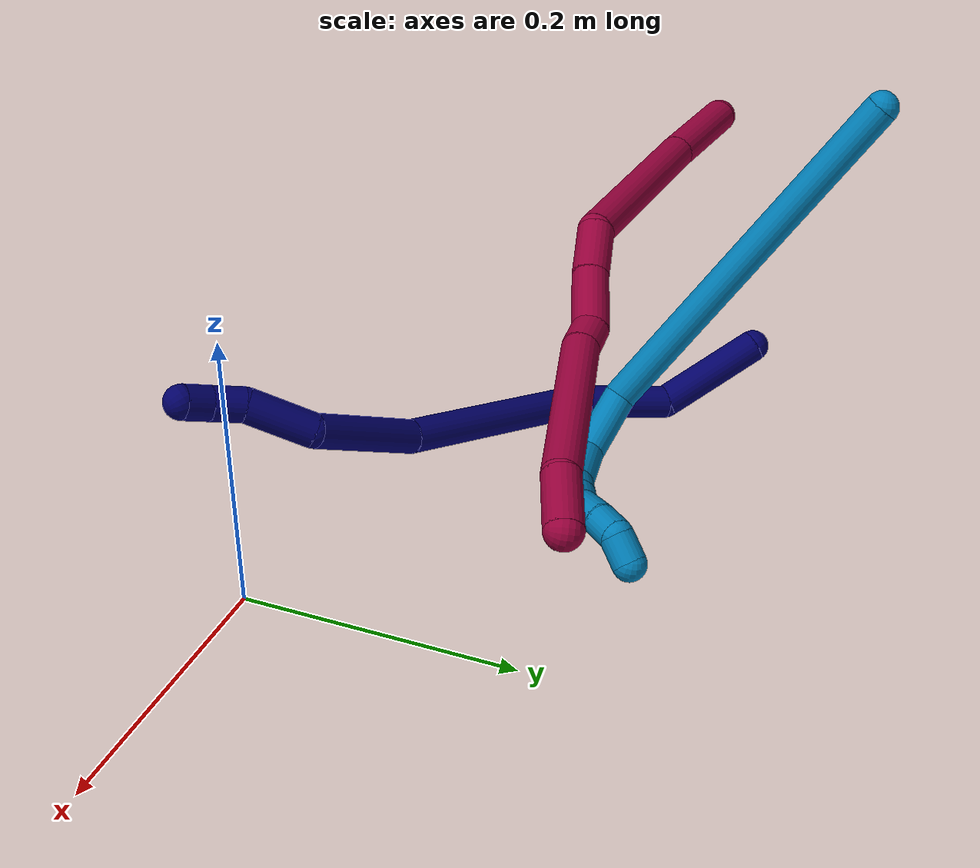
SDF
<sdf version="1.7">
 <world name="default">
  <model name="7">
   <static>0</static>
   <link name="7">
    <collision name="collision-cylinder-e_1_1_4">
     <pose>-0.009173 -0.005047 -0.040817 3.01857 -0.219456 -2.1221</pose>
     <geometry><cylinder><radius>0.0125</radius><length>0.084277</length></cylinder></geometry>
     <surface>
      <friction><ode><mu>1.16</mu><mu2>1.16</mu2><slip1>0</slip1><slip2>0</slip2></ode></friction>
      <contact><ode><kp>1e+06</kp><kd>1</kd><max_vel>0</max_vel><min_depth>0.001</min_depth></ode></contact>
     </surface>
    </collision>
    <visual name="visual-cylinder-e_1_1_4">
     <pose>-0.009173 -0.005047 -0.040817 3.01857 -0.219456 -2.1221</pose>
     <geometry><cylinder><radius>0.0125</radius><length>0.084277</length></cylinder></geometry>
     <material><ambient>0.003922 0 0.403922 1</ambient></material>
    </visual>
    <collision name="collision-cylinder-e_2_4_5">
     <pose>-0.008754 -0.025401 -0.114841 2.70967 0.25657 1.06306</pose>
     <geometry><cylinder><radius>0.0125</radius><length>0.075605</length></cylinder></geometry>
     <surface>
      <friction><ode><mu>1.16</mu><mu2>1.16</mu2><slip1>0</slip1><slip2>0</slip2></ode></friction>
      <contact><ode><kp>1e+06</kp><kd>1</kd><max_vel>0</max_vel><min_depth>0.001</min_depth></ode></contact>
     </surface>
    </collision>
    <visual name="visual-cylinder-e_2_4_5">
     <pose>-0.008754 -0.025401 -0.114841 2.70967 0.25657 1.06306</pose>
     <geometry><cylinder><radius>0.0125</radius><length>0.075605</length></cylinder></geometry>
     <material><ambient>0.003922 0 0.403922 1</ambient></material>
    </visual>
    <collision name="collision-cylinder-e_3_5_6">
     <pose>0.029582 -0.042269 -0.220498 3.12005 0.377598 3.02898</pose>
     <geometry><cylinder><radius>0.0125</radius><length>0.155918</length></cylinder></geometry>
     <surface>
      <friction><ode><mu>1.16</mu><mu2>1.16</mu2><slip1>0</slip1><slip2>0</slip2></ode></friction>
      <contact><ode><kp>1e+06</kp><kd>1</kd><max_vel>0</max_vel><min_depth>0.001</min_depth></ode></contact>
     </surface>
    </collision>
    <visual name="visual-cylinder-e_3_5_6">
     <pose>0.029582 -0.042269 -0.220498 3.12005 0.377598 3.02898</pose>
     <geometry><cylinder><radius>0.0125</radius><length>0.155918</length></cylinder></geometry>
     <material><ambient>0.003922 0 0.403922 1</ambient></material>
    </visual>
    <collision name="collision-cylinder-e_4_6_7">
     <pose>0.084224 -0.045992 -0.328974 3.08165 0.622469 2.95573</pose>
     <geometry><cylinder><radius>0.0125</radius><length>0.088843</length></cylinder></geometry>
     <surface>
      <friction><ode><mu>1.16</mu><mu2>1.16</mu2><slip1>0</slip1><slip2>0</slip2></ode></friction>
      <contact><ode><kp>1e+06</kp><kd>1</kd><max_vel>0</max_vel><min_depth>0.001</min_depth></ode></contact>
     </surface>
    </collision>
    <visual name="visual-cylinder-e_4_6_7">
     <pose>0.084224 -0.045992 -0.328974 3.08165 0.622469 2.95573</pose>
     <geometry><cylinder><radius>0.0125</radius><length>0.088843</length></cylinder></geometry>
     <material><ambient>0.003922 0 0.403922 1</ambient></material>
    </visual>
    <collision name="collision-cylinder-e_5_7_8">
     <pose>0.122581 -0.062389 -0.381687 2.43534 0.51651 1.24367</pose>
     <geometry><cylinder><radius>0.0125</radius><length>0.05045</length></cylinder></geometry>
     <surface>
      <friction><ode><mu>1.16</mu><mu2>1.16</mu2><slip1>0</slip1><slip2>0</slip2></ode></friction>
      <contact><ode><kp>1e+06</kp><kd>1</kd><max_vel>0</max_vel><min_depth>0.001</min_depth></ode></contact>
     </surface>
    </collision>
    <visual name="visual-cylinder-e_5_7_8">
     <pose>0.122581 -0.062389 -0.381687 2.43534 0.51651 1.24367</pose>
     <geometry><cylinder><radius>0.0125</radius><length>0.05045</length></cylinder></geometry>
     <material><ambient>0.003922 0 0.403922 1</ambient></material>
    </visual>
    <collision name="collision-cylinder-e_6_8_9">
     <pose>0.138713 -0.081316 -0.408644 2.71306 0.31462 1.25976</pose>
     <geometry><cylinder><radius>0.0125</radius><length>0.023747</length></cylinder></geometry>
     <surface>
      <friction><ode><mu>1.16</mu><mu2>1.16</mu2><slip1>0</slip1><slip2>0</slip2></ode></friction>
      <contact><ode><kp>1e+06</kp><kd>1</kd><max_vel>0</max_vel><min_depth>0.001</min_depth></ode></contact>
     </surface>
    </collision>
    <visual name="visual-cylinder-e_6_8_9">
     <pose>0.138713 -0.081316 -0.408644 2.71306 0.31462 1.25976</pose>
     <geometry><cylinder><radius>0.0125</radius><length>0.023747</length></cylinder></geometry>
     <material><ambient>0.003922 0 0.403922 1</ambient></material>
    </visual>
    <collision name="collision-cylinder-e_7_9_2">
     <pose>0.147648 -0.087681 -0.427939 2.95828 0.520489 2.47686</pose>
     <geometry><cylinder><radius>0.0125</radius><length>0.021159</length></cylinder></geometry>
     <surface>
      <friction><ode><mu>1.16</mu><mu2>1.16</mu2><slip1>0</slip1><slip2>0</slip2></ode></friction>
      <contact><ode><kp>1e+06</kp><kd>1</kd><max_vel>0</max_vel><min_depth>0.001</min_depth></ode></contact>
     </surface>
    </collision>
    <visual name="visual-cylinder-e_7_9_2">
     <pose>0.147648 -0.087681 -0.427939 2.95828 0.520489 2.47686</pose>
     <geometry><cylinder><radius>0.0125</radius><length>0.021159</length></cylinder></geometry>
     <material><ambient>0.003922 0 0.403922 1</ambient></material>
    </visual>
    <collision name="collision-sphere-2">
     <pose>0.15291 -0.089354 -0.436963 0 -0 0</pose>
     <geometry><sphere><radius>0.0125</radius></sphere></geometry>
     <surface>
      <friction><ode><mu>1.16</mu><mu2>1.16</mu2><slip1>0</slip1><slip2>0</slip2></ode></friction>
      <contact><ode><kp>1e+06</kp><kd>1</kd><max_vel>0</max_vel><min_depth>0.001</min_depth></ode></contact>
     </surface>
    </collision>
    <visual name="visual-sphere-2">
     <pose>0.15291 -0.089354 -0.436963 0 -0 0</pose>
     <geometry><sphere><radius>0.0125</radius></sphere></geometry>
     <material><ambient>0.003922 0 0.403922 1</ambient></material>
    </visual>
    <collision name="collision-sphere-9">
     <pose>0.142387 -0.086007 -0.418914 0 -0 0</pose>
     <geometry><sphere><radius>0.0125</radius></sphere></geometry>
     <surface>
      <friction><ode><mu>1.16</mu><mu2>1.16</mu2><slip1>0</slip1><slip2>0</slip2></ode></friction>
      <contact><ode><kp>1e+06</kp><kd>1</kd><max_vel>0</max_vel><min_depth>0.001</min_depth></ode></contact>
     </surface>
    </collision>
    <visual name="visual-sphere-9">
     <pose>0.142387 -0.086007 -0.418914 0 -0 0</pose>
     <geometry><sphere><radius>0.0125</radius></sphere></geometry>
     <material><ambient>0.003922 0 0.403922 1</ambient></material>
    </visual>
    <collision name="collision-sphere-4">
     <pose>-0.018347 -0.010094 -0.081634 0 -0 0</pose>
     <geometry><sphere><radius>0.0125</radius></sphere></geometry>
     <surface>
      <friction><ode><mu>1.16</mu><mu2>1.16</mu2><slip1>0</slip1><slip2>0</slip2></ode></friction>
      <contact><ode><kp>1e+06</kp><kd>1</kd><max_vel>0</max_vel><min_depth>0.001</min_depth></ode></contact>
     </surface>
    </collision>
    <visual name="visual-sphere-4">
     <pose>-0.018347 -0.010094 -0.081634 0 -0 0</pose>
     <geometry><sphere><radius>0.0125</radius></sphere></geometry>
     <material><ambient>0.003922 0 0.403922 1</ambient></material>
    </visual>
    <collision name="collision-sphere-1">
     <geometry><sphere><radius>0.0125</radius></sphere></geometry>
     <surface>
      <friction><ode><mu>1.16</mu><mu2>1.16</mu2><slip1>0</slip1><slip2>0</slip2></ode></friction>
      <contact><ode><kp>1e+06</kp><kd>1</kd><max_vel>0</max_vel><min_depth>0.001</min_depth></ode></contact>
     </surface>
    </collision>
    <visual name="visual-sphere-1">
     <geometry><sphere><radius>0.0125</radius></sphere></geometry>
     <material><ambient>0.003922 0 0.403922 1</ambient></material>
    </visual>
    <collision name="collision-sphere-8">
     <pose>0.135038 -0.076624 -0.398374 0 -0 0</pose>
     <geometry><sphere><radius>0.0125</radius></sphere></geometry>
     <surface>
      <friction><ode><mu>1.16</mu><mu2>1.16</mu2><slip1>0</slip1><slip2>0</slip2></ode></friction>
      <contact><ode><kp>1e+06</kp><kd>1</kd><max_vel>0</max_vel><min_depth>0.001</min_depth></ode></contact>
     </surface>
    </collision>
    <visual name="visual-sphere-8">
     <pose>0.135038 -0.076624 -0.398374 0 -0 0</pose>
     <geometry><sphere><radius>0.0125</radius></sphere></geometry>
     <material><ambient>0.003922 0 0.403922 1</ambient></material>
    </visual>
    <collision name="collision-sphere-5">
     <pose>0.000839 -0.040708 -0.148048 0 -0 0</pose>
     <geometry><sphere><radius>0.0125</radius></sphere></geometry>
     <surface>
      <friction><ode><mu>1.16</mu><mu2>1.16</mu2><slip1>0</slip1><slip2>0</slip2></ode></friction>
      <contact><ode><kp>1e+06</kp><kd>1</kd><max_vel>0</max_vel><min_depth>0.001</min_depth></ode></contact>
     </surface>
    </collision>
    <visual name="visual-sphere-5">
     <pose>0.000839 -0.040708 -0.148048 0 -0 0</pose>
     <geometry><sphere><radius>0.0125</radius></sphere></geometry>
     <material><ambient>0.003922 0 0.403922 1</ambient></material>
    </visual>
    <collision name="collision-sphere-6">
     <pose>0.058324 -0.043829 -0.292949 0 -0 0</pose>
     <geometry><sphere><radius>0.0125</radius></sphere></geometry>
     <surface>
      <friction><ode><mu>1.16</mu><mu2>1.16</mu2><slip1>0</slip1><slip2>0</slip2></ode></friction>
      <contact><ode><kp>1e+06</kp><kd>1</kd><max_vel>0</max_vel><min_depth>0.001</min_depth></ode></contact>
     </surface>
    </collision>
    <visual name="visual-sphere-6">
     <pose>0.058324 -0.043829 -0.292949 0 -0 0</pose>
     <geometry><sphere><radius>0.0125</radius></sphere></geometry>
     <material><ambient>0.003922 0 0.403922 1</ambient></material>
    </visual>
    <collision name="collision-sphere-7">
     <pose>0.110124 -0.048154 -0.364999 0 -0 0</pose>
     <geometry><sphere><radius>0.0125</radius></sphere></geometry>
     <surface>
      <friction><ode><mu>1.16</mu><mu2>1.16</mu2><slip1>0</slip1><slip2>0</slip2></ode></friction>
      <contact><ode><kp>1e+06</kp><kd>1</kd><max_vel>0</max_vel><min_depth>0.001</min_depth></ode></contact>
     </surface>
    </collision>
    <visual name="visual-sphere-7">
     <pose>0.110124 -0.048154 -0.364999 0 -0 0</pose>
     <geometry><sphere><radius>0.0125</radius></sphere></geometry>
     <material><ambient>0.003922 0 0.403922 1</ambient></material>
    </visual>
    <inertial>
     <pose>0.046525 -0.039912 -0.227489 0 -0 0</pose>
     <mass>0.5</mass>
     <inertia>
      <ixx>-0.000296</ixx>
      <ixy>0</ixy>
      <ixz>0</ixz>
      <iyy>0.000436</iyy>
      <iyz>0</iyz>
      <izz>-0.000155</izz>
     </inertia>
    </inertial>
   </link>
   <pose>-0.386294 0.246963 0.043737 -0.745705 -1.31422 0.188841</pose>
  </model>
  <model name="8">
   <static>0</static>
   <link name="8">
    <collision name="collision-cylinder-e_1_1_4">
     <pose>0.027939 0.018142 -0.022204 -2.45654 0.772422 -1.70177</pose>
     <geometry><cylinder><radius>0.0125</radius><length>0.080069</length></cylinder></geometry>
     <surface>
      <friction><ode><mu>1.16</mu><mu2>1.16</mu2><slip1>0</slip1><slip2>0</slip2></ode></friction>
      <contact><ode><kp>1e+06</kp><kd>1</kd><max_vel>0</max_vel><min_depth>0.001</min_depth></ode></contact>
     </surface>
    </collision>
    <visual name="visual-cylinder-e_1_1_4">
     <pose>0.027939 0.018142 -0.022204 -2.45654 0.772422 -1.70177</pose>
     <geometry><cylinder><radius>0.0125</radius><length>0.080069</length></cylinder></geometry>
     <material><ambient>0.584314 0 0.227451 1</ambient></material>
    </visual>
    <collision name="collision-cylinder-e_2_4_5">
     <pose>0.112527 0.069438 -0.083142 -2.43366 0.83798 -1.75638</pose>
     <geometry><cylinder><radius>0.0125</radius><length>0.152429</length></cylinder></geometry>
     <surface>
      <friction><ode><mu>1.16</mu><mu2>1.16</mu2><slip1>0</slip1><slip2>0</slip2></ode></friction>
      <contact><ode><kp>1e+06</kp><kd>1</kd><max_vel>0</max_vel><min_depth>0.001</min_depth></ode></contact>
     </surface>
    </collision>
    <visual name="visual-cylinder-e_2_4_5">
     <pose>0.112527 0.069438 -0.083142 -2.43366 0.83798 -1.75638</pose>
     <geometry><cylinder><radius>0.0125</radius><length>0.152429</length></cylinder></geometry>
     <material><ambient>0.584314 0 0.227451 1</ambient></material>
    </visual>
    <collision name="collision-cylinder-e_3_5_6">
     <pose>0.181203 0.117707 -0.124106 -1.71725 0.66682 -0.763042</pose>
     <geometry><cylinder><radius>0.0125</radius><length>0.038889</length></cylinder></geometry>
     <surface>
      <friction><ode><mu>1.16</mu><mu2>1.16</mu2><slip1>0</slip1><slip2>0</slip2></ode></friction>
      <contact><ode><kp>1e+06</kp><kd>1</kd><max_vel>0</max_vel><min_depth>0.001</min_depth></ode></contact>
     </surface>
    </collision>
    <visual name="visual-cylinder-e_3_5_6">
     <pose>0.181203 0.117707 -0.124106 -1.71725 0.66682 -0.763042</pose>
     <geometry><cylinder><radius>0.0125</radius><length>0.038889</length></cylinder></geometry>
     <material><ambient>0.584314 0 0.227451 1</ambient></material>
    </visual>
    <collision name="collision-cylinder-e_4_6_7">
     <pose>0.206797 0.149632 -0.12679 -1.59784 0.678926 -0.696092</pose>
     <geometry><cylinder><radius>0.0125</radius><length>0.043213</length></cylinder></geometry>
     <surface>
      <friction><ode><mu>1.16</mu><mu2>1.16</mu2><slip1>0</slip1><slip2>0</slip2></ode></friction>
      <contact><ode><kp>1e+06</kp><kd>1</kd><max_vel>0</max_vel><min_depth>0.001</min_depth></ode></contact>
     </surface>
    </collision>
    <visual name="visual-cylinder-e_4_6_7">
     <pose>0.206797 0.149632 -0.12679 -1.59784 0.678926 -0.696092</pose>
     <geometry><cylinder><radius>0.0125</radius><length>0.043213</length></cylinder></geometry>
     <material><ambient>0.584314 0 0.227451 1</ambient></material>
    </visual>
    <collision name="collision-cylinder-e_5_7_8">
     <pose>0.22882 0.172476 -0.131441 -2.17826 0.855118 -1.43393</pose>
     <geometry><cylinder><radius>0.0125</radius><length>0.022407</length></cylinder></geometry>
     <surface>
      <friction><ode><mu>1.16</mu><mu2>1.16</mu2><slip1>0</slip1><slip2>0</slip2></ode></friction>
      <contact><ode><kp>1e+06</kp><kd>1</kd><max_vel>0</max_vel><min_depth>0.001</min_depth></ode></contact>
     </surface>
    </collision>
    <visual name="visual-cylinder-e_5_7_8">
     <pose>0.22882 0.172476 -0.131441 -2.17826 0.855118 -1.43393</pose>
     <geometry><cylinder><radius>0.0125</radius><length>0.022407</length></cylinder></geometry>
     <material><ambient>0.584314 0 0.227451 1</ambient></material>
    </visual>
    <collision name="collision-cylinder-e_6_8_9">
     <pose>0.286766 0.212668 -0.147035 -1.8929 0.941827 -1.23032</pose>
     <geometry><cylinder><radius>0.0125</radius><length>0.122407</length></cylinder></geometry>
     <surface>
      <friction><ode><mu>1.16</mu><mu2>1.16</mu2><slip1>0</slip1><slip2>0</slip2></ode></friction>
      <contact><ode><kp>1e+06</kp><kd>1</kd><max_vel>0</max_vel><min_depth>0.001</min_depth></ode></contact>
     </surface>
    </collision>
    <visual name="visual-cylinder-e_6_8_9">
     <pose>0.286766 0.212668 -0.147035 -1.8929 0.941827 -1.23032</pose>
     <geometry><cylinder><radius>0.0125</radius><length>0.122407</length></cylinder></geometry>
     <material><ambient>0.584314 0 0.227451 1</ambient></material>
    </visual>
    <collision name="collision-cylinder-e_7_9_2">
     <pose>0.350926 0.260846 -0.158535 -1.57804 0.807848 -0.8131</pose>
     <geometry><cylinder><radius>0.0125</radius><length>0.040586</length></cylinder></geometry>
     <surface>
      <friction><ode><mu>1.16</mu><mu2>1.16</mu2><slip1>0</slip1><slip2>0</slip2></ode></friction>
      <contact><ode><kp>1e+06</kp><kd>1</kd><max_vel>0</max_vel><min_depth>0.001</min_depth></ode></contact>
     </surface>
    </collision>
    <visual name="visual-cylinder-e_7_9_2">
     <pose>0.350926 0.260846 -0.158535 -1.57804 0.807848 -0.8131</pose>
     <geometry><cylinder><radius>0.0125</radius><length>0.040586</length></cylinder></geometry>
     <material><ambient>0.584314 0 0.227451 1</ambient></material>
    </visual>
    <collision name="collision-sphere-2">
     <pose>0.365593 0.274869 -0.158637 0 -0 0</pose>
     <geometry><sphere><radius>0.0125</radius></sphere></geometry>
     <surface>
      <friction><ode><mu>1.16</mu><mu2>1.16</mu2><slip1>0</slip1><slip2>0</slip2></ode></friction>
      <contact><ode><kp>1e+06</kp><kd>1</kd><max_vel>0</max_vel><min_depth>0.001</min_depth></ode></contact>
     </surface>
    </collision>
    <visual name="visual-sphere-2">
     <pose>0.365593 0.274869 -0.158637 0 -0 0</pose>
     <geometry><sphere><radius>0.0125</radius></sphere></geometry>
     <material><ambient>0.584314 0 0.227451 1</ambient></material>
    </visual>
    <collision name="collision-sphere-9">
     <pose>0.336258 0.246823 -0.158434 0 -0 0</pose>
     <geometry><sphere><radius>0.0125</radius></sphere></geometry>
     <surface>
      <friction><ode><mu>1.16</mu><mu2>1.16</mu2><slip1>0</slip1><slip2>0</slip2></ode></friction>
      <contact><ode><kp>1e+06</kp><kd>1</kd><max_vel>0</max_vel><min_depth>0.001</min_depth></ode></contact>
     </surface>
    </collision>
    <visual name="visual-sphere-9">
     <pose>0.336258 0.246823 -0.158434 0 -0 0</pose>
     <geometry><sphere><radius>0.0125</radius></sphere></geometry>
     <material><ambient>0.584314 0 0.227451 1</ambient></material>
    </visual>
    <collision name="collision-sphere-4">
     <pose>0.055878 0.036284 -0.044409 0 -0 0</pose>
     <geometry><sphere><radius>0.0125</radius></sphere></geometry>
     <surface>
      <friction><ode><mu>1.16</mu><mu2>1.16</mu2><slip1>0</slip1><slip2>0</slip2></ode></friction>
      <contact><ode><kp>1e+06</kp><kd>1</kd><max_vel>0</max_vel><min_depth>0.001</min_depth></ode></contact>
     </surface>
    </collision>
    <visual name="visual-sphere-4">
     <pose>0.055878 0.036284 -0.044409 0 -0 0</pose>
     <geometry><sphere><radius>0.0125</radius></sphere></geometry>
     <material><ambient>0.584314 0 0.227451 1</ambient></material>
    </visual>
    <collision name="collision-sphere-1">
     <geometry><sphere><radius>0.0125</radius></sphere></geometry>
     <surface>
      <friction><ode><mu>1.16</mu><mu2>1.16</mu2><slip1>0</slip1><slip2>0</slip2></ode></friction>
      <contact><ode><kp>1e+06</kp><kd>1</kd><max_vel>0</max_vel><min_depth>0.001</min_depth></ode></contact>
     </surface>
    </collision>
    <visual name="visual-sphere-1">
     <geometry><sphere><radius>0.0125</radius></sphere></geometry>
     <material><ambient>0.584314 0 0.227451 1</ambient></material>
    </visual>
    <collision name="collision-sphere-8">
     <pose>0.237275 0.178512 -0.135637 0 -0 0</pose>
     <geometry><sphere><radius>0.0125</radius></sphere></geometry>
     <surface>
      <friction><ode><mu>1.16</mu><mu2>1.16</mu2><slip1>0</slip1><slip2>0</slip2></ode></friction>
      <contact><ode><kp>1e+06</kp><kd>1</kd><max_vel>0</max_vel><min_depth>0.001</min_depth></ode></contact>
     </surface>
    </collision>
    <visual name="visual-sphere-8">
     <pose>0.237275 0.178512 -0.135637 0 -0 0</pose>
     <geometry><sphere><radius>0.0125</radius></sphere></geometry>
     <material><ambient>0.584314 0 0.227451 1</ambient></material>
    </visual>
    <collision name="collision-sphere-5">
     <pose>0.169177 0.102591 -0.121876 0 -0 0</pose>
     <geometry><sphere><radius>0.0125</radius></sphere></geometry>
     <surface>
      <friction><ode><mu>1.16</mu><mu2>1.16</mu2><slip1>0</slip1><slip2>0</slip2></ode></friction>
      <contact><ode><kp>1e+06</kp><kd>1</kd><max_vel>0</max_vel><min_depth>0.001</min_depth></ode></contact>
     </surface>
    </collision>
    <visual name="visual-sphere-5">
     <pose>0.169177 0.102591 -0.121876 0 -0 0</pose>
     <geometry><sphere><radius>0.0125</radius></sphere></geometry>
     <material><ambient>0.584314 0 0.227451 1</ambient></material>
    </visual>
    <collision name="collision-sphere-6">
     <pose>0.193229 0.132823 -0.126336 0 -0 0</pose>
     <geometry><sphere><radius>0.0125</radius></sphere></geometry>
     <surface>
      <friction><ode><mu>1.16</mu><mu2>1.16</mu2><slip1>0</slip1><slip2>0</slip2></ode></friction>
      <contact><ode><kp>1e+06</kp><kd>1</kd><max_vel>0</max_vel><min_depth>0.001</min_depth></ode></contact>
     </surface>
    </collision>
    <visual name="visual-sphere-6">
     <pose>0.193229 0.132823 -0.126336 0 -0 0</pose>
     <geometry><sphere><radius>0.0125</radius></sphere></geometry>
     <material><ambient>0.584314 0 0.227451 1</ambient></material>
    </visual>
    <collision name="collision-sphere-7">
     <pose>0.220365 0.166441 -0.127245 0 -0 0</pose>
     <geometry><sphere><radius>0.0125</radius></sphere></geometry>
     <surface>
      <friction><ode><mu>1.16</mu><mu2>1.16</mu2><slip1>0</slip1><slip2>0</slip2></ode></friction>
      <contact><ode><kp>1e+06</kp><kd>1</kd><max_vel>0</max_vel><min_depth>0.001</min_depth></ode></contact>
     </surface>
    </collision>
    <visual name="visual-sphere-7">
     <pose>0.220365 0.166441 -0.127245 0 -0 0</pose>
     <geometry><sphere><radius>0.0125</radius></sphere></geometry>
     <material><ambient>0.584314 0 0.227451 1</ambient></material>
    </visual>
    <inertial>
     <pose>0.17969 0.127128 -0.104269 0 -0 0</pose>
     <mass>0.5</mass>
     <inertia><ixx>-0.0003</ixx><ixy>0</ixy><ixz>0</ixz><iyy>8e-06</iyy><iyz>0</iyz><izz>-0.000669</izz></inertia>
    </inertial>
   </link>
   <pose>-0.437131 0.194008 0.211455 -1.8061 -0.420121 0.577649</pose>
  </model>
  <model name="9">
   <static>0</static>
   <link name="9">
    <collision name="collision-cylinder-e_1_1_4">
     <pose>-0.061038 0.031016 0.127935 -0.237848 -0.434161 0.052695</pose>
     <geometry><cylinder><radius>0.0125</radius><length>0.290206</length></cylinder></geometry>
     <surface>
      <friction><ode><mu>1.16</mu><mu2>1.16</mu2><slip1>0</slip1><slip2>0</slip2></ode></friction>
      <contact><ode><kp>1e+06</kp><kd>1</kd><max_vel>0</max_vel><min_depth>0.001</min_depth></ode></contact>
     </surface>
    </collision>
    <visual name="visual-cylinder-e_1_1_4">
     <pose>-0.061038 0.031016 0.127935 -0.237848 -0.434161 0.052695</pose>
     <geometry><cylinder><radius>0.0125</radius><length>0.290206</length></cylinder></geometry>
     <material><ambient>0 0.490196 0.709804 1</ambient></material>
    </visual>
    <collision name="collision-cylinder-e_2_4_5">
     <pose>-0.125644 0.084544 0.270551 -0.992891 -0.132003 0.071579</pose>
     <geometry><cylinder><radius>0.0125</radius><length>0.054224</length></cylinder></geometry>
     <surface>
      <friction><ode><mu>1.16</mu><mu2>1.16</mu2><slip1>0</slip1><slip2>0</slip2></ode></friction>
      <contact><ode><kp>1e+06</kp><kd>1</kd><max_vel>0</max_vel><min_depth>0.001</min_depth></ode></contact>
     </surface>
    </collision>
    <visual name="visual-cylinder-e_2_4_5">
     <pose>-0.125644 0.084544 0.270551 -0.992891 -0.132003 0.071579</pose>
     <geometry><cylinder><radius>0.0125</radius><length>0.054224</length></cylinder></geometry>
     <material><ambient>0 0.490196 0.709804 1</ambient></material>
    </visual>
    <collision name="collision-cylinder-e_3_5_6">
     <pose>-0.126935 0.129038 0.285567 -1.55563 0.103233 -0.101682</pose>
     <geometry><cylinder><radius>0.0125</radius><length>0.044204</length></cylinder></geometry>
     <surface>
      <friction><ode><mu>1.16</mu><mu2>1.16</mu2><slip1>0</slip1><slip2>0</slip2></ode></friction>
      <contact><ode><kp>1e+06</kp><kd>1</kd><max_vel>0</max_vel><min_depth>0.001</min_depth></ode></contact>
     </surface>
    </collision>
    <visual name="visual-cylinder-e_3_5_6">
     <pose>-0.126935 0.129038 0.285567 -1.55563 0.103233 -0.101682</pose>
     <geometry><cylinder><radius>0.0125</radius><length>0.044204</length></cylinder></geometry>
     <material><ambient>0 0.490196 0.709804 1</ambient></material>
    </visual>
    <collision name="collision-cylinder-e_4_6_7">
     <pose>-0.121159 0.161831 0.283384 -1.79945 0.305242 -0.38271</pose>
     <geometry><cylinder><radius>0.0125</radius><length>0.023277</length></cylinder></geometry>
     <surface>
      <friction><ode><mu>1.16</mu><mu2>1.16</mu2><slip1>0</slip1><slip2>0</slip2></ode></friction>
      <contact><ode><kp>1e+06</kp><kd>1</kd><max_vel>0</max_vel><min_depth>0.001</min_depth></ode></contact>
     </surface>
    </collision>
    <visual name="visual-cylinder-e_4_6_7">
     <pose>-0.121159 0.161831 0.283384 -1.79945 0.305242 -0.38271</pose>
     <geometry><cylinder><radius>0.0125</radius><length>0.023277</length></cylinder></geometry>
     <material><ambient>0 0.490196 0.709804 1</ambient></material>
    </visual>
    <collision name="collision-cylinder-e_5_7_8">
     <pose>-0.114405 0.182713 0.278114 -1.83774 0.30238 -0.394044</pose>
     <geometry><cylinder><radius>0.0125</radius><length>0.021872</length></cylinder></geometry>
     <surface>
      <friction><ode><mu>1.16</mu><mu2>1.16</mu2><slip1>0</slip1><slip2>0</slip2></ode></friction>
      <contact><ode><kp>1e+06</kp><kd>1</kd><max_vel>0</max_vel><min_depth>0.001</min_depth></ode></contact>
     </surface>
    </collision>
    <visual name="visual-cylinder-e_5_7_8">
     <pose>-0.114405 0.182713 0.278114 -1.83774 0.30238 -0.394044</pose>
     <geometry><cylinder><radius>0.0125</radius><length>0.021872</length></cylinder></geometry>
     <material><ambient>0 0.490196 0.709804 1</ambient></material>
    </visual>
    <collision name="collision-cylinder-e_6_8_9">
     <pose>-0.102531 0.200526 0.273297 -1.83116 0.821687 -1.03143</pose>
     <geometry><cylinder><radius>0.0125</radius><length>0.023535</length></cylinder></geometry>
     <surface>
      <friction><ode><mu>1.16</mu><mu2>1.16</mu2><slip1>0</slip1><slip2>0</slip2></ode></friction>
      <contact><ode><kp>1e+06</kp><kd>1</kd><max_vel>0</max_vel><min_depth>0.001</min_depth></ode></contact>
     </surface>
    </collision>
    <visual name="visual-cylinder-e_6_8_9">
     <pose>-0.102531 0.200526 0.273297 -1.83116 0.821687 -1.03143</pose>
     <geometry><cylinder><radius>0.0125</radius><length>0.023535</length></cylinder></geometry>
     <material><ambient>0 0.490196 0.709804 1</ambient></material>
    </visual>
    <collision name="collision-cylinder-e_7_9_10">
     <pose>-0.086116 0.215298 0.270583 -1.66313 0.83512 -0.905786</pose>
     <geometry><cylinder><radius>0.0125</radius><length>0.021037</length></cylinder></geometry>
     <surface>
      <friction><ode><mu>1.16</mu><mu2>1.16</mu2><slip1>0</slip1><slip2>0</slip2></ode></friction>
      <contact><ode><kp>1e+06</kp><kd>1</kd><max_vel>0</max_vel><min_depth>0.001</min_depth></ode></contact>
     </surface>
    </collision>
    <visual name="visual-cylinder-e_7_9_10">
     <pose>-0.086116 0.215298 0.270583 -1.66313 0.83512 -0.905786</pose>
     <geometry><cylinder><radius>0.0125</radius><length>0.021037</length></cylinder></geometry>
     <material><ambient>0 0.490196 0.709804 1</ambient></material>
    </visual>
    <collision name="collision-cylinder-e_8_10_2">
     <pose>-0.070828 0.226888 0.276275 -0.623435 0.764319 -0.257581</pose>
     <geometry><cylinder><radius>0.0125</radius><length>0.021645</length></cylinder></geometry>
     <surface>
      <friction><ode><mu>1.16</mu><mu2>1.16</mu2><slip1>0</slip1><slip2>0</slip2></ode></friction>
      <contact><ode><kp>1e+06</kp><kd>1</kd><max_vel>0</max_vel><min_depth>0.001</min_depth></ode></contact>
     </surface>
    </collision>
    <visual name="visual-cylinder-e_8_10_2">
     <pose>-0.070828 0.226888 0.276275 -0.623435 0.764319 -0.257581</pose>
     <geometry><cylinder><radius>0.0125</radius><length>0.021645</length></cylinder></geometry>
     <material><ambient>0 0.490196 0.709804 1</ambient></material>
    </visual>
    <collision name="collision-sphere-2">
     <pose>-0.063338 0.231449 0.282618 0 -0 0</pose>
     <geometry><sphere><radius>0.0125</radius></sphere></geometry>
     <surface>
      <friction><ode><mu>1.16</mu><mu2>1.16</mu2><slip1>0</slip1><slip2>0</slip2></ode></friction>
      <contact><ode><kp>1e+06</kp><kd>1</kd><max_vel>0</max_vel><min_depth>0.001</min_depth></ode></contact>
     </surface>
    </collision>
    <visual name="visual-sphere-2">
     <pose>-0.063338 0.231449 0.282618 0 -0 0</pose>
     <geometry><sphere><radius>0.0125</radius></sphere></geometry>
     <material><ambient>0 0.490196 0.709804 1</ambient></material>
    </visual>
    <collision name="collision-sphere-10">
     <pose>-0.078318 0.222327 0.269932 0 -0 0</pose>
     <geometry><sphere><radius>0.0125</radius></sphere></geometry>
     <surface>
      <friction><ode><mu>1.16</mu><mu2>1.16</mu2><slip1>0</slip1><slip2>0</slip2></ode></friction>
      <contact><ode><kp>1e+06</kp><kd>1</kd><max_vel>0</max_vel><min_depth>0.001</min_depth></ode></contact>
     </surface>
    </collision>
    <visual name="visual-sphere-10">
     <pose>-0.078318 0.222327 0.269932 0 -0 0</pose>
     <geometry><sphere><radius>0.0125</radius></sphere></geometry>
     <material><ambient>0 0.490196 0.709804 1</ambient></material>
    </visual>
    <collision name="collision-sphere-9">
     <pose>-0.093914 0.208269 0.271234 0 -0 0</pose>
     <geometry><sphere><radius>0.0125</radius></sphere></geometry>
     <surface>
      <friction><ode><mu>1.16</mu><mu2>1.16</mu2><slip1>0</slip1><slip2>0</slip2></ode></friction>
      <contact><ode><kp>1e+06</kp><kd>1</kd><max_vel>0</max_vel><min_depth>0.001</min_depth></ode></contact>
     </surface>
    </collision>
    <visual name="visual-sphere-9">
     <pose>-0.093914 0.208269 0.271234 0 -0 0</pose>
     <geometry><sphere><radius>0.0125</radius></sphere></geometry>
     <material><ambient>0 0.490196 0.709804 1</ambient></material>
    </visual>
    <collision name="collision-sphere-4">
     <pose>-0.122075 0.062032 0.25587 0 -0 0</pose>
     <geometry><sphere><radius>0.0125</radius></sphere></geometry>
     <surface>
      <friction><ode><mu>1.16</mu><mu2>1.16</mu2><slip1>0</slip1><slip2>0</slip2></ode></friction>
      <contact><ode><kp>1e+06</kp><kd>1</kd><max_vel>0</max_vel><min_depth>0.001</min_depth></ode></contact>
     </surface>
    </collision>
    <visual name="visual-sphere-4">
     <pose>-0.122075 0.062032 0.25587 0 -0 0</pose>
     <geometry><sphere><radius>0.0125</radius></sphere></geometry>
     <material><ambient>0 0.490196 0.709804 1</ambient></material>
    </visual>
    <collision name="collision-sphere-1">
     <geometry><sphere><radius>0.0125</radius></sphere></geometry>
     <surface>
      <friction><ode><mu>1.16</mu><mu2>1.16</mu2><slip1>0</slip1><slip2>0</slip2></ode></friction>
      <contact><ode><kp>1e+06</kp><kd>1</kd><max_vel>0</max_vel><min_depth>0.001</min_depth></ode></contact>
     </surface>
    </collision>
    <visual name="visual-sphere-1">
     <geometry><sphere><radius>0.0125</radius></sphere></geometry>
     <material><ambient>0 0.490196 0.709804 1</ambient></material>
    </visual>
    <collision name="collision-sphere-8">
     <pose>-0.111148 0.192783 0.27536 0 -0 0</pose>
     <geometry><sphere><radius>0.0125</radius></sphere></geometry>
     <surface>
      <friction><ode><mu>1.16</mu><mu2>1.16</mu2><slip1>0</slip1><slip2>0</slip2></ode></friction>
      <contact><ode><kp>1e+06</kp><kd>1</kd><max_vel>0</max_vel><min_depth>0.001</min_depth></ode></contact>
     </surface>
    </collision>
    <visual name="visual-sphere-8">
     <pose>-0.111148 0.192783 0.27536 0 -0 0</pose>
     <geometry><sphere><radius>0.0125</radius></sphere></geometry>
     <material><ambient>0 0.490196 0.709804 1</ambient></material>
    </visual>
    <collision name="collision-sphere-5">
     <pose>-0.129212 0.107056 0.285233 0 -0 0</pose>
     <geometry><sphere><radius>0.0125</radius></sphere></geometry>
     <surface>
      <friction><ode><mu>1.16</mu><mu2>1.16</mu2><slip1>0</slip1><slip2>0</slip2></ode></friction>
      <contact><ode><kp>1e+06</kp><kd>1</kd><max_vel>0</max_vel><min_depth>0.001</min_depth></ode></contact>
     </surface>
    </collision>
    <visual name="visual-sphere-5">
     <pose>-0.129212 0.107056 0.285233 0 -0 0</pose>
     <geometry><sphere><radius>0.0125</radius></sphere></geometry>
     <material><ambient>0 0.490196 0.709804 1</ambient></material>
    </visual>
    <collision name="collision-sphere-6">
     <pose>-0.124657 0.15102 0.2859 0 -0 0</pose>
     <geometry><sphere><radius>0.0125</radius></sphere></geometry>
     <surface>
      <friction><ode><mu>1.16</mu><mu2>1.16</mu2><slip1>0</slip1><slip2>0</slip2></ode></friction>
      <contact><ode><kp>1e+06</kp><kd>1</kd><max_vel>0</max_vel><min_depth>0.001</min_depth></ode></contact>
     </surface>
    </collision>
    <visual name="visual-sphere-6">
     <pose>-0.124657 0.15102 0.2859 0 -0 0</pose>
     <geometry><sphere><radius>0.0125</radius></sphere></geometry>
     <material><ambient>0 0.490196 0.709804 1</ambient></material>
    </visual>
    <collision name="collision-sphere-7">
     <pose>-0.117662 0.172642 0.280868 0 -0 0</pose>
     <geometry><sphere><radius>0.0125</radius></sphere></geometry>
     <surface>
      <friction><ode><mu>1.16</mu><mu2>1.16</mu2><slip1>0</slip1><slip2>0</slip2></ode></friction>
      <contact><ode><kp>1e+06</kp><kd>1</kd><max_vel>0</max_vel><min_depth>0.001</min_depth></ode></contact>
     </surface>
    </collision>
    <visual name="visual-sphere-7">
     <pose>-0.117662 0.172642 0.280868 0 -0 0</pose>
     <geometry><sphere><radius>0.0125</radius></sphere></geometry>
     <material><ambient>0 0.490196 0.709804 1</ambient></material>
    </visual>
    <inertial>
     <pose>-0.082435 0.082424 0.190409 0 -0 0</pose>
     <mass>0.5</mass>
     <inertia>
      <ixx>0.001975</ixx>
      <ixy>0</ixy>
      <ixz>0</ixz>
      <iyy>0.002122</iyy>
      <iyz>0</iyz>
      <izz>0.000414</izz>
     </inertia>
    </inertial>
   </link>
   <pose>-0.375916 0.328568 0.261916 3.06759 0.174412 1.6309</pose>
  </model>
 </world>
</sdf>
